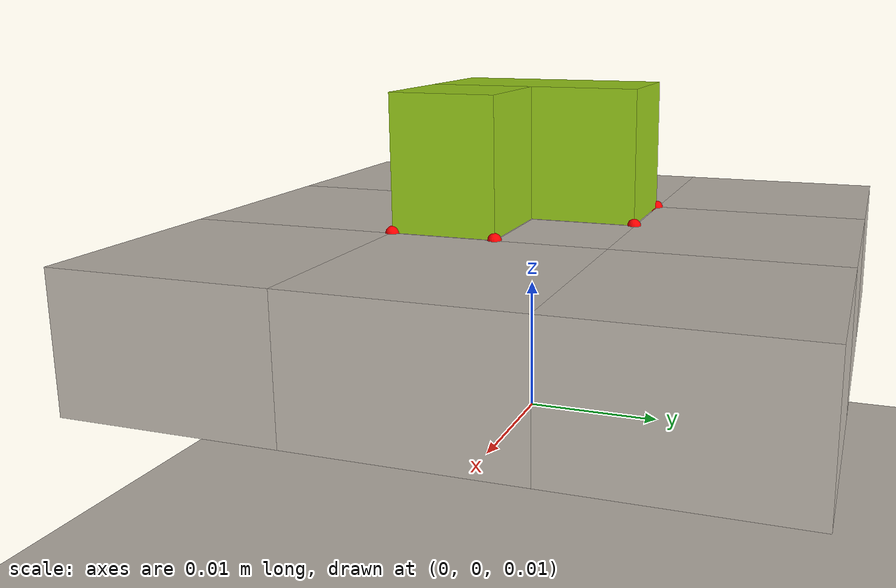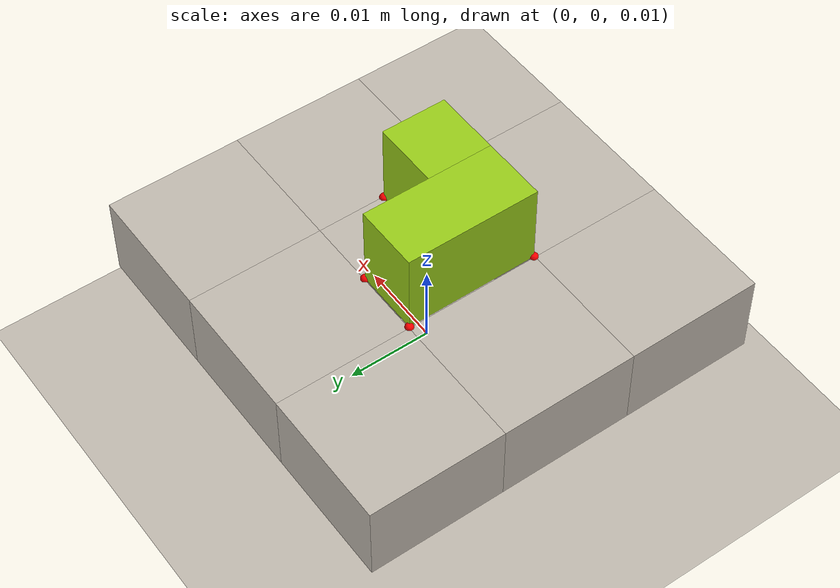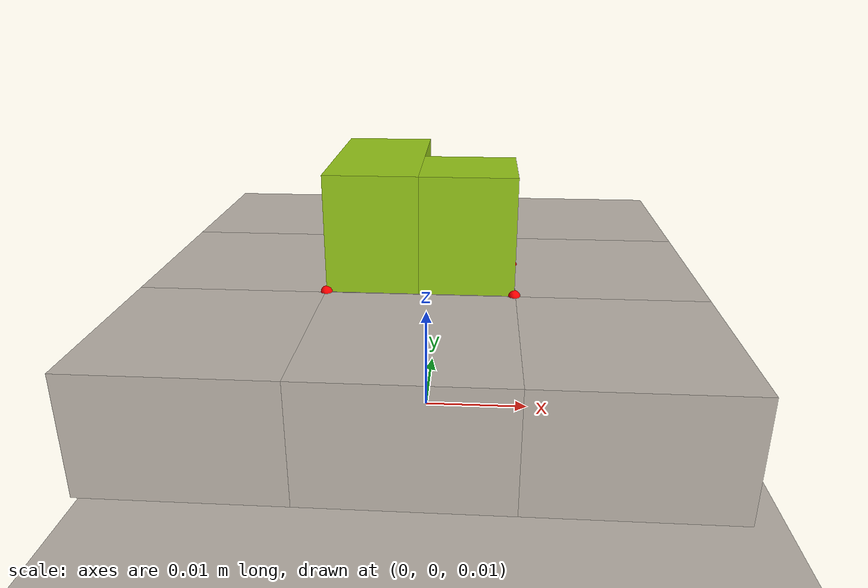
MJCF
<mujoco model="spring_peginhole">
    <compiler angle="radian"
              inertiafromgeom="true"
              texturedir="textures/"
              meshdir="mesh/"
              coordinate="local"
              settotalmass="5"/>
    <option timestep="0.01" gravity="0 0 0" iterations="20" integrator="RK4" />

    <size nstack="300000" nuser_geom="1"/>
    <default>
        <geom contype='1' conaffinity='1' condim='4'  margin="0" solref=".02 1" solimp=".8 .9 .001" />
        <joint armature="0.1" damping=".1"/>

        <default class="slide_joint">
            <joint type="slide" damping='1'/>
        </default>
        <default class="hinge_joint">
            <joint type="hinge" damping='1'/>
        </default>
    </default>

    <visual>
        <map fogstart="3" fogend="5" znear="0.05"/>
        <quality shadowsize="2048"/>
        <scale framelength="0.1"
               framewidth="0.005"
               contactwidth="0.1"
               contactheight="0.005"
               forcewidth="0.01"
               />
    </visual>

    <!--Assets-->
    <asset>

        <mesh name="lego"       file="Lego_22.stl" scale="0.85 0.85 1"/>

        <texture name="floor_tex"   type="2d"        file="fanuc.png" />
        <texture name="metal"        type="cube"     file="fanuc.png"/>

        <material name='floor_mat'      texture="floor_tex"  shininess="0.8" texrepeat="10 10" specular="0.7"  reflectance="0.2" />
        <material name="bench_mat"      texture="metal"   shininess="0.1" specular="0.5" reflectance="0.2"/>
    </asset>

    <!--MODEL DESCRIPTION-->
    <worldbody>

        <geom name='floor' material="floor_mat" pos='0 0 0' size='0.3 0.3 0.0001'  type='plane' />

        <body name="peg" pos="0.0 0.0 0.03">
            <joint name="slide1" class="slide_joint" axis="1 0 0"/>
            <joint name="slide2" class="slide_joint" axis="0 1 0"/>
            <joint name="slide3" class="slide_joint" axis="0 0 1"/>
            <joint name="hinge1" class="hinge_joint" axis="1 0 0"/>
            <joint name="hinge2" class="hinge_joint" axis="0 1 0"/>
            <joint name="hinge3" class="hinge_joint" axis="0 0 1"/>

            <site name="vertex1" pos = "-0.0079 -0.0079 -0.005" type="sphere" size="0.0005" rgba="1 0 0 1"/>
            <site name="vertex2" pos = "-0.0079 0.0079 -0.005" type="sphere" size="0.0005" rgba="1 0 0 1"/>
            <site name="vertex3" pos = "0.0079 -0.0079 -0.005" type="sphere" size="0.0005" rgba="1 0 0 1"/>
            <site name="vertex4" pos = "0.0079 -0.0001 -0.005" type="sphere" size="0.0005" rgba="1 0 0 1"/>
            <site name="vertex5" pos = "-0.0001 0.0079 -0.005" type="sphere" size="0.0005" rgba="1 0 0 1"/>
            <geom type="box" pos="-0.004 0 0" size="0.0039 0.0079 0.005 " rgba="0.6 0.8 .1 1" contype="1" conaffinity="1"/>
            <geom type="box" pos="0.0039 -0.004 0" size="0.004 0.0039 0.005 " rgba="0.6 0.8 .1 1" contype="1" conaffinity="1"/>
        </body>

        <body name="hole" pos="0 0 0.005">
            <geom type="box"  pos="-0.016 -0.016 0.015" size="0.008 0.008 0.005 " material="bench_mat" contype="1" conaffinity="1"/>
            <geom type="box"  pos="-0.016 0 0.015" size="0.008 0.008 0.005 " material="bench_mat" contype="1" conaffinity="1"/>
            <geom type="box"  pos="-0.016 0.016 0.015" size="0.008 0.008 0.005 " material="bench_mat" contype="1" conaffinity="1"/>
            <geom type="box"  pos="0 -0.016 0.015" size="0.008 0.008 0.005 " material="bench_mat" contype="1" conaffinity="1"/>
            <geom type="box"  pos="0 0.016 0.015" size="0.008 0.008 0.005 " material="bench_mat" contype="1" conaffinity="1"/>
            <geom type="box"  pos="0.016 -0.016 0.015" size="0.008 0.008 0.005 " material="bench_mat" contype="1" conaffinity="1"/>
            <geom type="box"  pos="0.016 0 0.015" size="0.008 0.008 0.005 " material="bench_mat" contype="1" conaffinity="1"/>
            <geom type="box"  pos="0.016 0.016 0.015" size="0.008 0.008 0.005 " material="bench_mat" contype="1" conaffinity="1"/>
            <geom type="box"  pos="0.004 0.004 0.015" size="0.004 0.004 0.005 " material="bench_mat" contype="1" conaffinity="1"/>
        </body>

    </worldbody>

    <!--ACTUATORS-->
    <actuator>
        <velocity name='velocity1' joint='slide1' kv="10" ctrllimited = "true" ctrlrange = "-0.1 0.1" forcelimited = "true" forcerange = "-50 50"/>
        <velocity name='velocity2' joint='slide2' kv="10" ctrllimited = "true" ctrlrange = "-0.1 0.1" forcelimited = "true" forcerange = "-50 50"/>
        <velocity name='velocity3' joint='slide3' kv="10" ctrllimited = "true" ctrlrange = "-0.1 0.1" forcelimited = "true" forcerange = "-50 50"/>
        <velocity name='rotation1' joint='hinge1' kv="10"  ctrllimited = "true" ctrlrange = "-0.35 0.35" forcelimited = "true" forcerange = "-10 10"/>
        <velocity name='rotation2' joint='hinge2' kv="10" ctrllimited = "true" ctrlrange = "-0.35 0.35" forcelimited = "true" forcerange = "-10 10"/>
        <velocity name='rotation3' joint='hinge3' kv="10" ctrllimited = "true" ctrlrange = "-0.35 0.35" forcelimited = "true" forcerange = "-10 10"/>

    </actuator>

    <sensor>
     <force  name="forcesensor" site="vertex1" />
    </sensor>

</mujoco>
